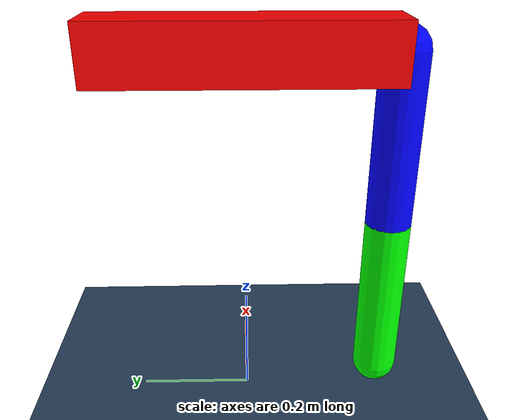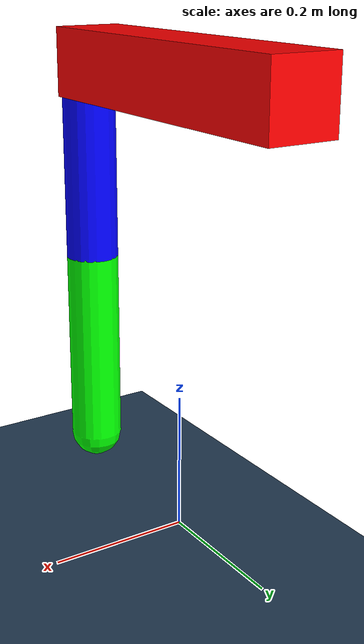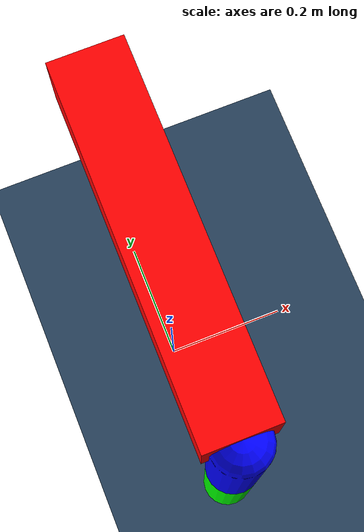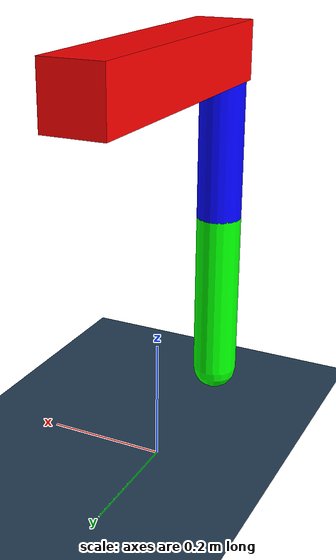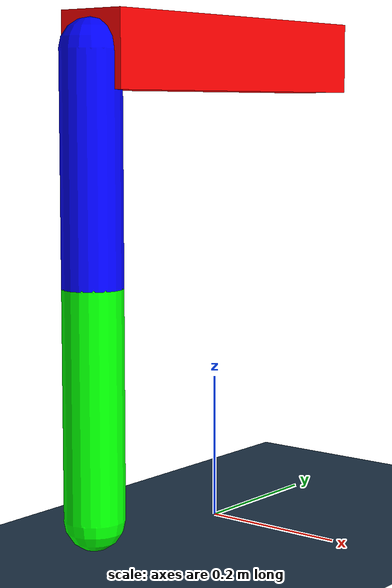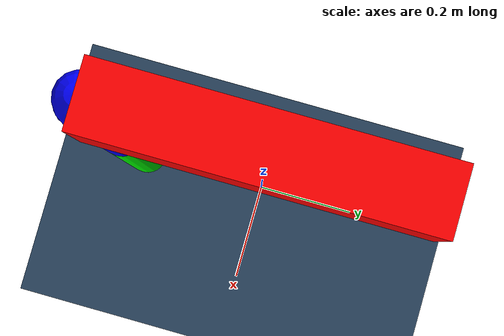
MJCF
<mujoco model="iiwa14 scene">

  <option gravity="0 0 0"  timestep="0.001" integrator="implicitfast"/>
  <statistic center="0.2 0 0.2" extent="1.0"/>
  <compiler angle="radian" autolimits="true"/>
  <visual>
    <headlight diffuse="0.6 0.6 0.6" ambient="0.3 0.3 0.3" specular="0 0 0"/>
    <rgba haze="0.15 0.25 0.35 1"/>
    <global azimuth="-120" elevation="-20"/>
    <map force='0.2'/>
  </visual>

  <asset>
    <texture type="skybox" builtin="gradient" rgb1="0.3 0.5 0.7" rgb2="0 0 0" width="512" height="3072"/>
    <texture type="2d" name="groundplane" builtin="checker" mark="edge" rgb1="0.2 0.3 0.4" rgb2="0.1 0.2 0.3"
      markrgb="0.8 0.8 0.8" width="300" height="300"/>
    <material name="groundplane" texture="groundplane" texuniform="true" texrepeat="5 5" reflectance="0.2"/>
  </asset>
<default>
    <geom contype="0" conaffinity="0"/>
</default>
<worldbody>
    <light pos="0 0 2" dir="0 0 -1" directional="true"/>
    <geom name="floor" size="0 0 0.05" type="plane" material="groundplane"/>

        <!-- 第一连杆 -->
        <body name="link1_1" pos="0 -0.25 0.05">
            <geom name="link1_1geom" type="capsule" fromto="0 0 0 0 0 0.3" size="0.04"
                  rgba="0 1 0 1"/>
            <inertial pos="0 0 0.15" mass="1" diaginertia="0.05 0.05 0.005"/>

            <!-- 第二连杆 -->
            <body name="link1_2" pos="0 0 0.3">
                <site name="sensor1_2" pos="0 0 0" size="0.01"/>
                <geom name="link1_2geom" type="capsule" fromto="0 0 0 0 0 0.3" size="0.04"
                      rgba="0 0 1 1"/>
                <inertial pos="0 0 0.15" mass="1" diaginertia="0.05 0.05 0.005"/>
                <!-- 末端执行器位置标记 -->
                <site name="end_effector1" pos="0 0 0.3" size="0.01" rgba="1 0 0 1"/>
            <body name="target_object" pos="0 0.25 0.3" quat="1 0 0 0">

            <inertial pos="0 0.1 0" mass="0.0001" diaginertia="0.0001 0.0001 0.0001"/>
            <site name="object_site2" pos="0 0 0" size="0.01" rgba="1 0 0 1"/>
            <geom size="0.05 0.25 0.05" type="box" rgba="1 0 0 1" contype="0" conaffinity="0"/>
        </body>
            </body>
        </body>

</worldbody>

</mujoco>
